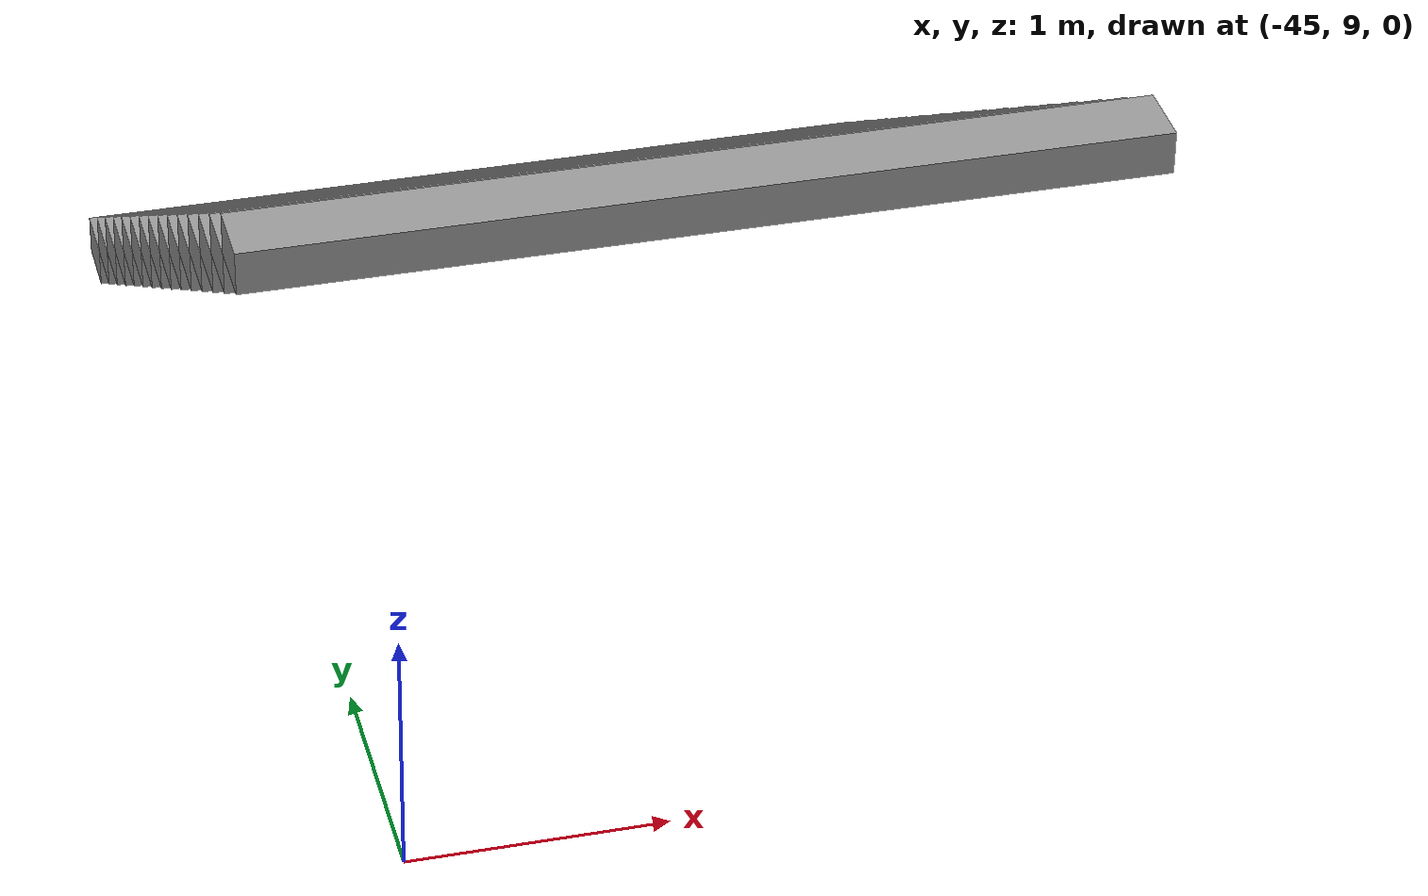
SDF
<sdf version="1.6">
 <model name="car_parking_underground_big_1">
  <pose>-9.36123 -7.37411 0 0 -0 0</pose>
  <link name="Stairs_0">
   <visual name="Stairs_0_Visual_0">
    <pose>-34.4203 20.5482 0.083333 0 -0 0</pose>
    <geometry><box><size>3.38 0.264 0.166667</size></box></geometry>
    <material>
     <script><uri>file://media/materials/scripts/gazebo.material</uri><name>Gazebo/Grey</name></script>
     <ambient>1 1 1 1</ambient>
    </material>
    <meta><layer>0</layer></meta>
   </visual>
   <collision name="Stairs_0_Collision_0">
    <geometry><box><size>3.38 0.264 0.166667</size></box></geometry>
    <pose>-34.4203 20.5482 0.083333 0 -0 0</pose>
   </collision>
   <visual name="Stairs_0_Visual_1">
    <pose>-34.4203 20.2842 0.25 0 -0 0</pose>
    <geometry><box><size>3.38 0.264 0.166667</size></box></geometry>
    <material>
     <script><uri>file://media/materials/scripts/gazebo.material</uri><name>Gazebo/Grey</name></script>
     <ambient>1 1 1 1</ambient>
    </material>
    <meta><layer>0</layer></meta>
   </visual>
   <collision name="Stairs_0_Collision_1">
    <geometry><box><size>3.38 0.264 0.166667</size></box></geometry>
    <pose>-34.4203 20.2842 0.25 0 -0 0</pose>
   </collision>
   <visual name="Stairs_0_Visual_2">
    <pose>-34.4203 20.0202 0.416667 0 -0 0</pose>
    <geometry><box><size>3.38 0.264 0.166667</size></box></geometry>
    <material>
     <script><uri>file://media/materials/scripts/gazebo.material</uri><name>Gazebo/Grey</name></script>
     <ambient>1 1 1 1</ambient>
    </material>
    <meta><layer>0</layer></meta>
   </visual>
   <collision name="Stairs_0_Collision_2">
    <geometry><box><size>3.38 0.264 0.166667</size></box></geometry>
    <pose>-34.4203 20.0202 0.416667 0 -0 0</pose>
   </collision>
   <visual name="Stairs_0_Visual_3">
    <pose>-34.4203 19.7562 0.583333 0 -0 0</pose>
    <geometry><box><size>3.38 0.264 0.166667</size></box></geometry>
    <material>
     <script><uri>file://media/materials/scripts/gazebo.material</uri><name>Gazebo/Grey</name></script>
     <ambient>1 1 1 1</ambient>
    </material>
    <meta><layer>0</layer></meta>
   </visual>
   <collision name="Stairs_0_Collision_3">
    <geometry><box><size>3.38 0.264 0.166667</size></box></geometry>
    <pose>-34.4203 19.7562 0.583333 0 -0 0</pose>
   </collision>
   <visual name="Stairs_0_Visual_4">
    <pose>-34.4203 19.4922 0.75 0 -0 0</pose>
    <geometry><box><size>3.38 0.264 0.166667</size></box></geometry>
    <material>
     <script><uri>file://media/materials/scripts/gazebo.material</uri><name>Gazebo/Grey</name></script>
     <ambient>1 1 1 1</ambient>
    </material>
    <meta><layer>0</layer></meta>
   </visual>
   <collision name="Stairs_0_Collision_4">
    <geometry><box><size>3.38 0.264 0.166667</size></box></geometry>
    <pose>-34.4203 19.4922 0.75 0 -0 0</pose>
   </collision>
   <visual name="Stairs_0_Visual_5">
    <pose>-34.4203 19.2282 0.916667 0 -0 0</pose>
    <geometry><box><size>3.38 0.264 0.166667</size></box></geometry>
    <material>
     <script><uri>file://media/materials/scripts/gazebo.material</uri><name>Gazebo/Grey</name></script>
     <ambient>1 1 1 1</ambient>
    </material>
    <meta><layer>0</layer></meta>
   </visual>
   <collision name="Stairs_0_Collision_5">
    <geometry><box><size>3.38 0.264 0.166667</size></box></geometry>
    <pose>-34.4203 19.2282 0.916667 0 -0 0</pose>
   </collision>
   <visual name="Stairs_0_Visual_6">
    <pose>-34.4203 18.9642 1.08333 0 -0 0</pose>
    <geometry><box><size>3.38 0.264 0.166667</size></box></geometry>
    <material>
     <script><uri>file://media/materials/scripts/gazebo.material</uri><name>Gazebo/Grey</name></script>
     <ambient>1 1 1 1</ambient>
    </material>
    <meta><layer>0</layer></meta>
   </visual>
   <collision name="Stairs_0_Collision_6">
    <geometry><box><size>3.38 0.264 0.166667</size></box></geometry>
    <pose>-34.4203 18.9642 1.08333 0 -0 0</pose>
   </collision>
   <visual name="Stairs_0_Visual_7">
    <pose>-34.4203 18.7002 1.25 0 -0 0</pose>
    <geometry><box><size>3.38 0.264 0.166667</size></box></geometry>
    <material>
     <script><uri>file://media/materials/scripts/gazebo.material</uri><name>Gazebo/Grey</name></script>
     <ambient>1 1 1 1</ambient>
    </material>
    <meta><layer>0</layer></meta>
   </visual>
   <collision name="Stairs_0_Collision_7">
    <geometry><box><size>3.38 0.264 0.166667</size></box></geometry>
    <pose>-34.4203 18.7002 1.25 0 -0 0</pose>
   </collision>
   <visual name="Stairs_0_Visual_8">
    <pose>-34.4203 18.4362 1.41667 0 -0 0</pose>
    <geometry><box><size>3.38 0.264 0.166667</size></box></geometry>
    <material>
     <script><uri>file://media/materials/scripts/gazebo.material</uri><name>Gazebo/Grey</name></script>
     <ambient>1 1 1 1</ambient>
    </material>
    <meta><layer>0</layer></meta>
   </visual>
   <collision name="Stairs_0_Collision_8">
    <geometry><box><size>3.38 0.264 0.166667</size></box></geometry>
    <pose>-34.4203 18.4362 1.41667 0 -0 0</pose>
   </collision>
   <visual name="Stairs_0_Visual_9">
    <pose>-34.4203 18.1722 1.58333 0 -0 0</pose>
    <geometry><box><size>3.38 0.264 0.166667</size></box></geometry>
    <material>
     <script><uri>file://media/materials/scripts/gazebo.material</uri><name>Gazebo/Grey</name></script>
     <ambient>1 1 1 1</ambient>
    </material>
    <meta><layer>0</layer></meta>
   </visual>
   <collision name="Stairs_0_Collision_9">
    <geometry><box><size>3.38 0.264 0.166667</size></box></geometry>
    <pose>-34.4203 18.1722 1.58333 0 -0 0</pose>
   </collision>
   <visual name="Stairs_0_Visual_10">
    <pose>-34.4203 17.9082 1.75 0 -0 0</pose>
    <geometry><box><size>3.38 0.264 0.166667</size></box></geometry>
    <material>
     <script><uri>file://media/materials/scripts/gazebo.material</uri><name>Gazebo/Grey</name></script>
     <ambient>1 1 1 1</ambient>
    </material>
    <meta><layer>0</layer></meta>
   </visual>
   <collision name="Stairs_0_Collision_10">
    <geometry><box><size>3.38 0.264 0.166667</size></box></geometry>
    <pose>-34.4203 17.9082 1.75 0 -0 0</pose>
   </collision>
   <visual name="Stairs_0_Visual_11">
    <pose>-34.4203 17.6442 1.91667 0 -0 0</pose>
    <geometry><box><size>3.38 0.264 0.166667</size></box></geometry>
    <material>
     <script><uri>file://media/materials/scripts/gazebo.material</uri><name>Gazebo/Grey</name></script>
     <ambient>1 1 1 1</ambient>
    </material>
    <meta><layer>0</layer></meta>
   </visual>
   <collision name="Stairs_0_Collision_11">
    <geometry><box><size>3.38 0.264 0.166667</size></box></geometry>
    <pose>-34.4203 17.6442 1.91667 0 -0 0</pose>
   </collision>
   <visual name="Stairs_0_Visual_12">
    <pose>-34.4203 17.3802 2.08333 0 -0 0</pose>
    <geometry><box><size>3.38 0.264 0.166667</size></box></geometry>
    <material>
     <script><uri>file://media/materials/scripts/gazebo.material</uri><name>Gazebo/Grey</name></script>
     <ambient>1 1 1 1</ambient>
    </material>
    <meta><layer>0</layer></meta>
   </visual>
   <collision name="Stairs_0_Collision_12">
    <geometry><box><size>3.38 0.264 0.166667</size></box></geometry>
    <pose>-34.4203 17.3802 2.08333 0 -0 0</pose>
   </collision>
   <visual name="Stairs_0_Visual_13">
    <pose>-34.4203 17.1162 2.25 0 -0 0</pose>
    <geometry><box><size>3.38 0.264 0.166667</size></box></geometry>
    <material>
     <script><uri>file://media/materials/scripts/gazebo.material</uri><name>Gazebo/Grey</name></script>
     <ambient>1 1 1 1</ambient>
    </material>
    <meta><layer>0</layer></meta>
   </visual>
   <collision name="Stairs_0_Collision_13">
    <geometry><box><size>3.38 0.264 0.166667</size></box></geometry>
    <pose>-34.4203 17.1162 2.25 0 -0 0</pose>
   </collision>
   <visual name="Stairs_0_Visual_14">
    <pose>-34.4203 16.8522 2.41667 0 -0 0</pose>
    <geometry><box><size>3.38 0.264 0.166667</size></box></geometry>
    <material>
     <script><uri>file://media/materials/scripts/gazebo.material</uri><name>Gazebo/Grey</name></script>
     <ambient>1 1 1 1</ambient>
    </material>
    <meta><layer>0</layer></meta>
   </visual>
   <collision name="Stairs_0_Collision_14">
    <geometry><box><size>3.38 0.264 0.166667</size></box></geometry>
    <pose>-34.4203 16.8522 2.41667 0 -0 0</pose>
   </collision>
  </link>
  <static>1</static>
 </model>
</sdf>
